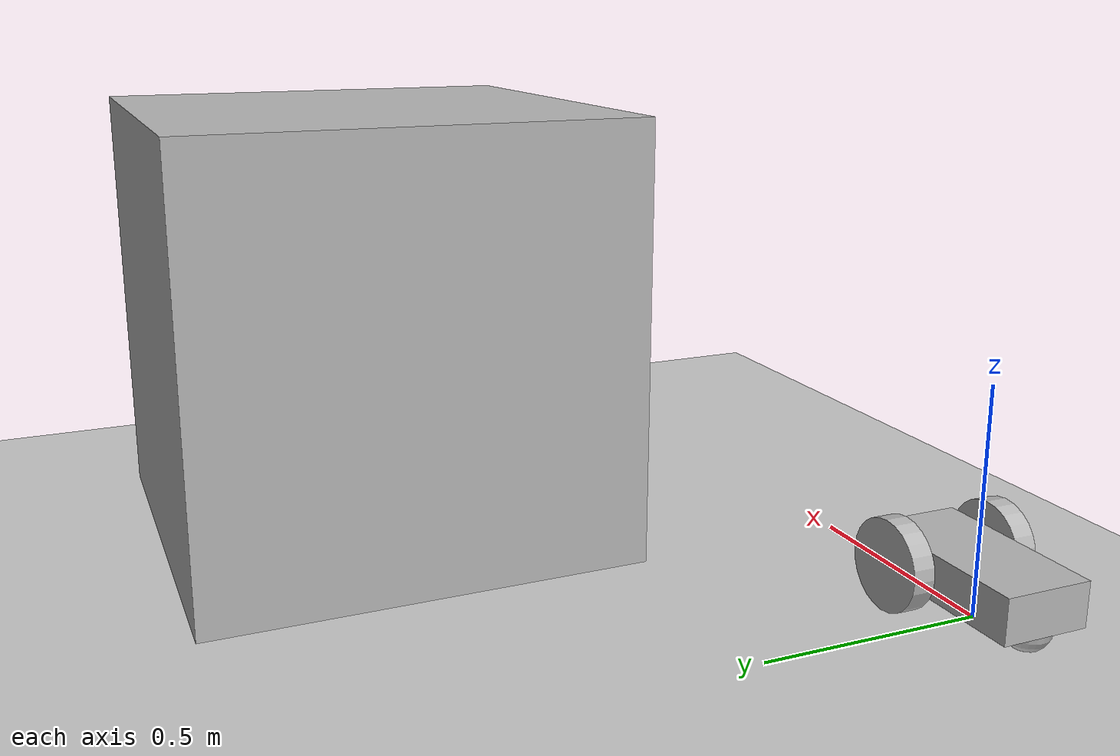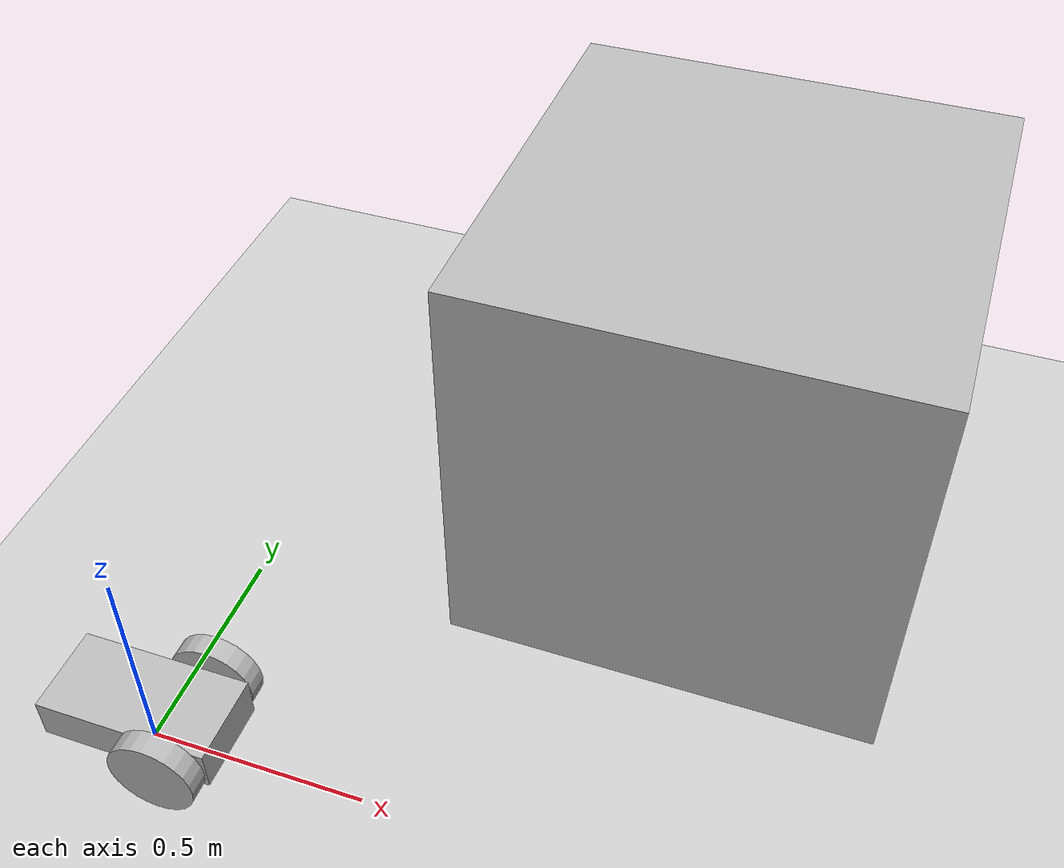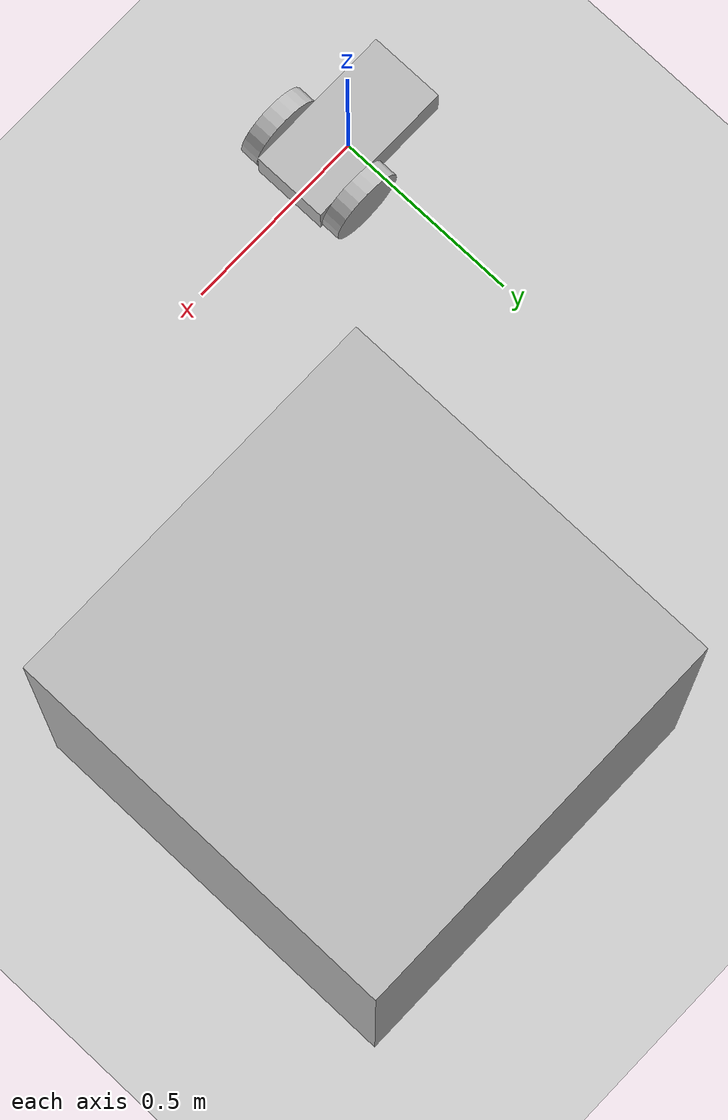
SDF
<?xml version="1.0"?>
<sdf version="1.5">
  <world name="default">
    <include>
      <uri>model://sun</uri>
    </include>

    <include>
      <uri>model://ground_plane</uri>
    </include>

    <model name="box1">
      <link name="box1">
      <pose>1 1 0.5 0 0 0</pose>
        <visual name="v1">
          <geometry>
            <box><size>1 1 1</size></box>
          </geometry>
        </visual>
        <collision name="c1">
          <geometry>
            <box><size>1 1 1</size></box>
          </geometry>
        </collision>
      </link>
    </model>

    <include>
      <pose>0 0 0 0 0 0</pose>
      <uri>model://t1_robot</uri>
    </include>
    <gui fullscreen='0'>
      <!-- KEYPUBLISHER SEE: https://github.com/osrf/car_demo/issues/25 -->
      <plugin name='keyboard' filename='libKeyboardGUIPlugin.so'/>
    </gui>
  </world>
</sdf>

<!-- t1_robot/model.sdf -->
<sdf version='1.5'>
      <model name="t1_robot">
        <static>false</static>

        <link name='chassis'>
          <pose>0 0 .1 0 0 0</pose>

   <inertial>
    <mass>10</mass>
    <inertia>
      <ixx>6.6666666e-02</ixx>
      <ixy>0</ixy>
      <ixz>0</ixz>
      <iyy>0.226666666666</iyy>
      <iyz>0</iyz>
      <izz>0.26666666666</izz>
    </inertia>
  </inertial>

          <collision name='collision'>
            <geometry>
              <box>
                <size>.4 .2 .1</size>
              </box>

            </geometry>
          </collision>

          <visual name='visual'>
            <geometry>
              <box>
                <size>.4 .2 .1</size>
              </box>

            </geometry>
          </visual>

          <collision name='caster_collision'>
            <pose>-0.15 0 -0.05 0 0 0</pose>
            <geometry>
              <sphere>
              <radius>.05</radius>
            </sphere>
          </geometry>

          <surface>
            <friction>
              <ode>
                <mu>0</mu>
                <mu2>0</mu2>
                <slip1>1.0</slip1>
                <slip2>1.0</slip2>
              </ode>
            </friction>
          </surface>
        </collision>

        <visual name='caster_visual'>
          <pose>-0.15 0 -0.05 0 0 0</pose>
          <geometry>
            <sphere>
              <radius>.05</radius>
            </sphere>
          </geometry>
        </visual>
      </link>

      <link name="left_wheel">
        <pose>0.1 0.13 0.1 0 1.5707 1.5707</pose>

  <inertial>
    <mass>1</mass>
    <inertia>
      <ixx>4.25424005174e-03</ixx>
      <ixy>0</ixy>
      <ixz>0</ixz>
      <iyy>4.25424005174e-03</iyy>
      <iyz>0</iyz>
      <izz>7.85398163397e-03</izz>
    </inertia>
  </inertial>

        <collision name="collision">
          <geometry>
            <cylinder>
              <radius>.1</radius>
              <length>.05</length>
            </cylinder>
          </geometry>
        </collision>
        <visual name="visual">
          <geometry>
            <cylinder>
              <radius>.1</radius>
              <length>.05</length>
            </cylinder>
          </geometry>
        </visual>
      </link>

      <link name="right_wheel">
        <pose>0.1 -0.13 0.1 0 1.5707 1.5707</pose>

  <inertial>
    <mass>1</mass>
    <inertia>
      <ixx>4.25424005174e-03</ixx>
      <ixy>0</ixy>
      <ixz>0</ixz>
      <iyy>4.25424005174e-03</iyy>
      <iyz>0</iyz>
      <izz>7.85398163397e-03</izz>
    </inertia>
  </inertial>

  <inertial>
    <mass>1</mass>
    <inertia>
      <ixx>4.25424005174e-03</ixx>
      <ixy>0</ixy>
      <ixz>0</ixz>
      <iyy>4.25424005174e-03</iyy>
      <iyz>0</iyz>
      <izz>7.85398163397e-03</izz>
    </inertia>
  </inertial>

        <collision name="collision">
          <geometry>
            <cylinder>
              <radius>.1</radius>
              <length>.05</length>
            </cylinder>
          </geometry>
        </collision>
        <visual name="visual">
          <geometry>
            <cylinder>
              <radius>.1</radius>
              <length>.05</length>
            </cylinder>
          </geometry>
        </visual>
      </link>

      <joint type="revolute" name="left_wheel_hinge">
        <pose>0 0 0 0 0 0</pose>
        <child>left_wheel</child>
        <parent>chassis</parent>
        <axis>
          <xyz>0 0 1</xyz>
        </axis>
      </joint>

      <joint type="revolute" name="right_wheel_hinge">
        <pose>0 0 0 0 0 0</pose>
        <child>right_wheel</child>
        <parent>chassis</parent>
        <axis>
          <xyz>0 0 1</xyz>
        </axis>
      </joint>

      <plugin name="robotmoving" filename="libMyDiffDrivePlugin.so">
        <left_joint>left_wheel_hinge</left_joint>
        <right_joint>right_wheel_hinge</right_joint>
        <sholder_joint>sholder_hinge</sholder_joint>
      </plugin>

   </model>
  </sdf>
